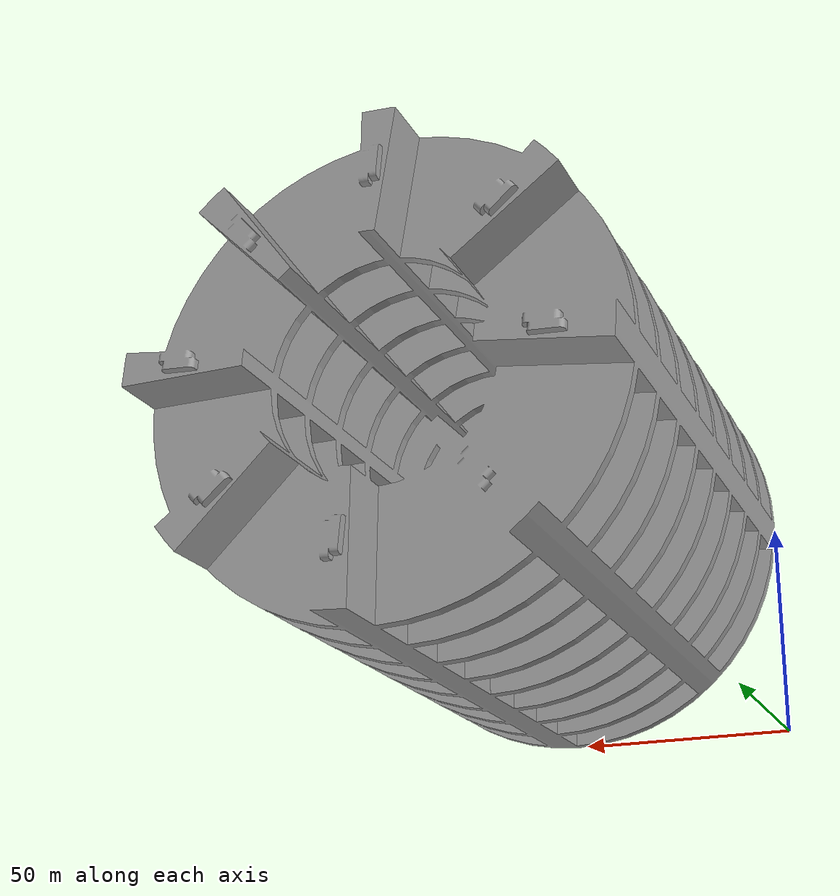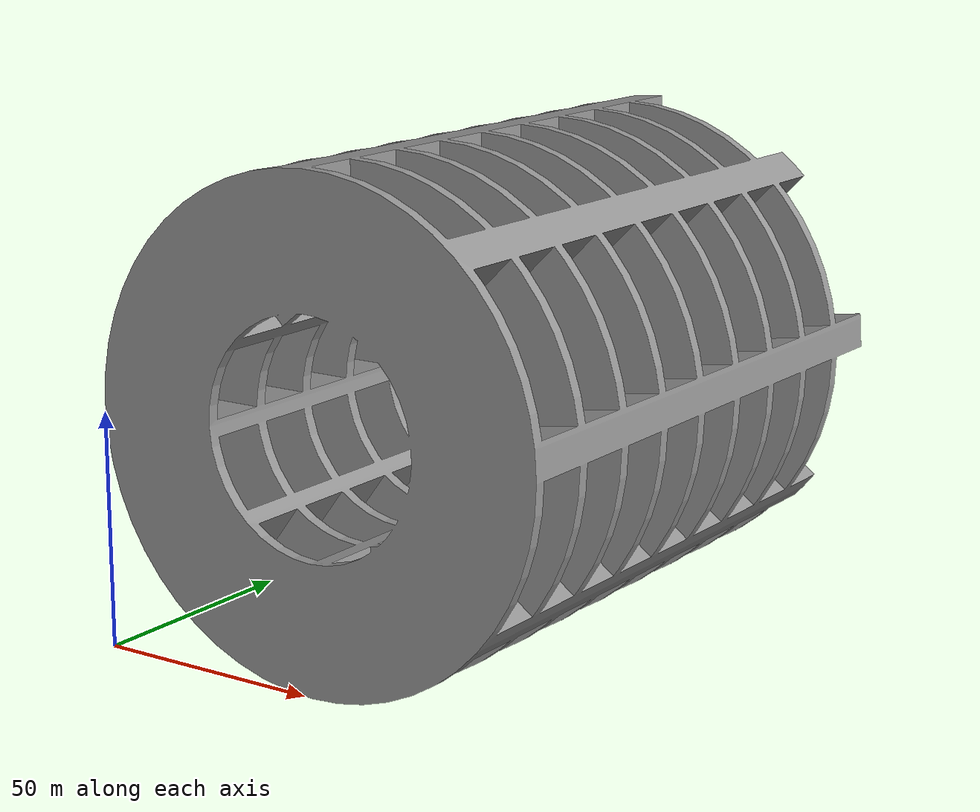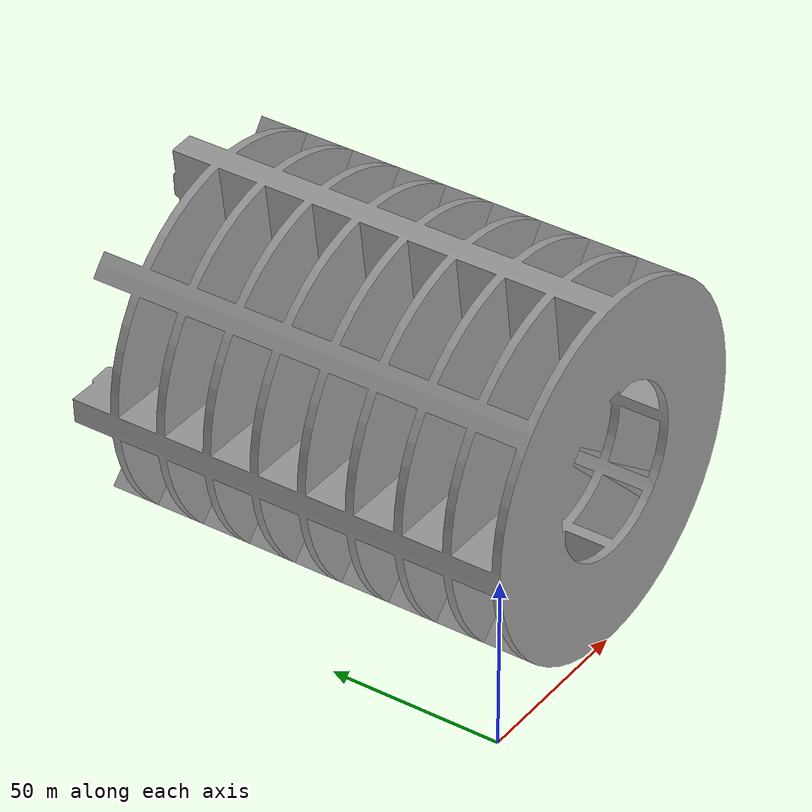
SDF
<?xml version='1.0'?>
<sdf version='1.5'>
  <model name='Trap'>
    <link name='link_0'>
      <pose frame=''>0 0 0 0 -0 0</pose>
      <visual name='visual'>
        <pose frame=''>0 0 0 0 -0 0</pose>
        <geometry>
          <mesh>
            <uri>/home/uav/Downloads/Trap_Assembly.STL</uri>
            <scale>1 1 1</scale>
          </mesh>
        </geometry>
        <material>
          <lighting>1</lighting>
          <script>
            <uri>file://media/materials/scripts/gazebo.material</uri>
            <name>Gazebo/Grey</name>
          </script>
          <shader type='pixel'/>
          <ambient>0.3 0.3 0.3 1</ambient>
          <diffuse>0.7 0.7 0.7 1</diffuse>
          <specular>0.01 0.01 0.01 1</specular>
          <emissive>0 0 0 1</emissive>
        </material>
        <cast_shadows>1</cast_shadows>
        <transparency>0</transparency>
      </visual>
      <collision name='collision'>
        <laser_retro>0</laser_retro>
        <max_contacts>10</max_contacts>
        <pose frame=''>0 0 0 0 -0 0</pose>
        <geometry>
          <mesh>
            <uri>/home/uav/Downloads/Trap_Assembly.STL</uri>
          </mesh>
        </geometry>
        <surface>
          <friction>
            <ode>
              <mu>1</mu>
              <mu2>1</mu2>
              <fdir1>0 0 0</fdir1>
              <slip1>0</slip1>
              <slip2>0</slip2>
            </ode>
          </friction>
          <bounce>
            <restitution_coefficient>0</restitution_coefficient>
            <threshold>1e+06</threshold>
          </bounce>
          <contact>
            <collide_without_contact>0</collide_without_contact>
            <collide_without_contact_bitmask>1</collide_without_contact_bitmask>
            <collide_bitmask>1</collide_bitmask>
            <ode>
              <soft_cfm>0</soft_cfm>
              <soft_erp>0.2</soft_erp>
              <kp>1e+13</kp>
              <kd>1</kd>
              <max_vel>0.01</max_vel>
              <min_depth>0</min_depth>
            </ode>
            <bullet>
              <split_impulse>1</split_impulse>
              <split_impulse_penetration_threshold>-0.01</split_impulse_penetration_threshold>
              <soft_cfm>0</soft_cfm>
              <soft_erp>0.2</soft_erp>
              <kp>1e+13</kp>
              <kd>1</kd>
            </bullet>
          </contact>
        </surface>
      </collision>
    </link>
    <static>0</static>
    <allow_auto_disable>1</allow_auto_disable>
  </model>
</sdf>
